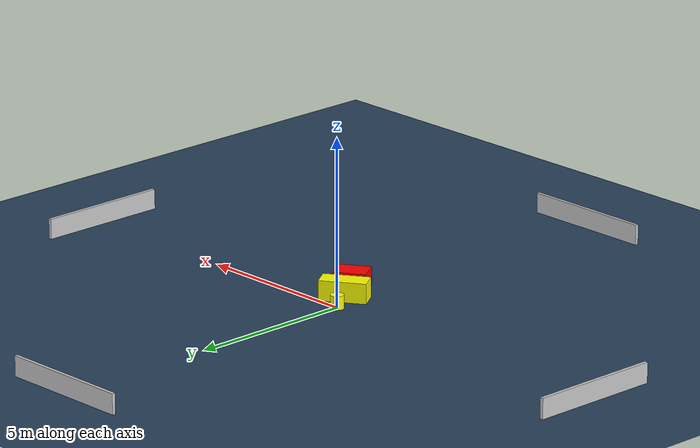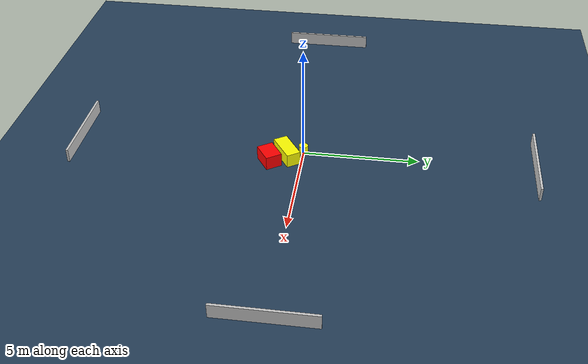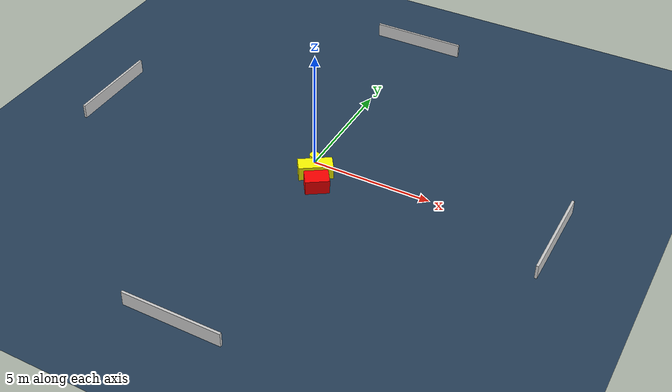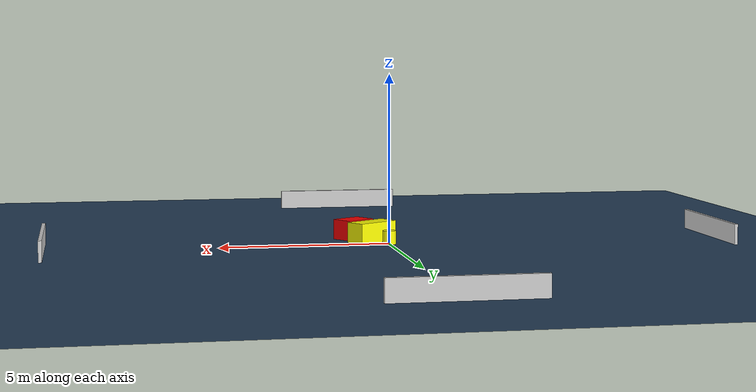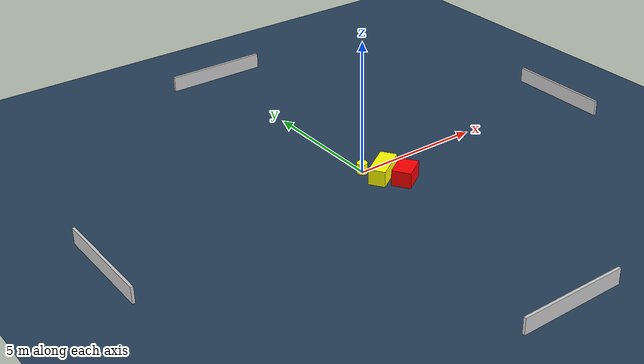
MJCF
<?xml version="1.0" ?>
<mujoco model="generated_environment">
  <option timestep="0.01" integrator="RK4" cone="elliptic"/>
  <default>
    <geom density="1"/>
  </default>
  <asset>
    <texture builtin="gradient" height="3072" name="skybox" rgb1="0.3 0.5 0.7" rgb2="0 0 0" type="skybox" width="512"/>
    <texture builtin="checker" height="300" name="groundplane" rgb1="0.2 0.3 0.4" rgb2="0.1 0.2 0.3" type="2d" width="300"/>
    <material name="groundplane" reflectance="0.2" texrepeat="5 5" texture="groundplane"/>
  </asset>
  <worldbody>
    <light dir="0 0 -1" directional="true" pos="0 0 1.5"/>
    <geom condim="3" friction="0.5 0.005 0.001" material="groundplane" name="floor" pos="0 0 0" size="0 0 0.05" type="plane"/>
    <body name="walls">
      <geom name="wall_1" condim="4" pos="-10.0 0.0 0.3" rgba="0.800000011920929 0.800000011920929 0.800000011920929 1.0" size="0.05 2.0 0.3" type="box"/>
      <geom name="wall_2" condim="4" pos="10.0 0.0 0.3" rgba="0.800000011920929 0.800000011920929 0.800000011920929 1.0" size="0.05 2.0 0.3" type="box"/>
      <geom name="wall_3" condim="4" pos="0.0 -10.0 0.3" rgba="0.800000011920929 0.800000011920929 0.800000011920929 1.0" size="2.0 0.05 0.3" type="box"/>
      <geom name="wall_4" condim="4" pos="0.0 10.0 0.3" rgba="0.800000011920929 0.800000011920929 0.800000011920929 1.0" size="2.0 0.05 0.3" type="box"/>
    </body>
    <body name="robot">
      <joint name="joint_x" type="slide" pos="0 0 0" axis="1 0 0"/>
      <joint name="joint_y" type="slide" pos="0 0 0" axis="0 1 0"/>
      <geom name="robot" type="cylinder" pos="0.0 0.0 0.2" size="0.2 0.2 0.0" mass="5.0" friction="1.0 0.005 0.0001" condim="4" rgba="1.0 1.0 0.0 1.0"/>
    </body>
    <body name="obstacle_1_movable">
      <geom name="obstacle_1_movable" condim="4" pos="0.4005176672781045 -0.669510039100483 0.3" euler="0 0 303.6663164262638" friction="0.0 0.005 0.001" rgba="1.0 1.0 0.0 1.0" size="0.3095485135095253 0.6903871406932744 0.3" type="box" mass="0.1"/>
      <joint type="free"/>
    </body>
    <body name="obstacle_2_static">
      <geom name="obstacle_2_static" condim="4" pos="0.8413499455611335 -1.3696411463988232 0.3" euler="0 0 123.69266382674283" friction="0.0 0.005 0.001" rgba="1.0 0.0 0.0 1.0" size="0.3578484459479865 0.48257263935873623 0.3" type="box"/>
    </body>
  </worldbody>
  <actuator>
    <motor name="actuator_x" joint="joint_x" gear="1" ctrlrange="-1 1"/>
    <motor name="actuator_y" joint="joint_y" gear="1" ctrlrange="-1 1"/>
  </actuator>
</mujoco>
